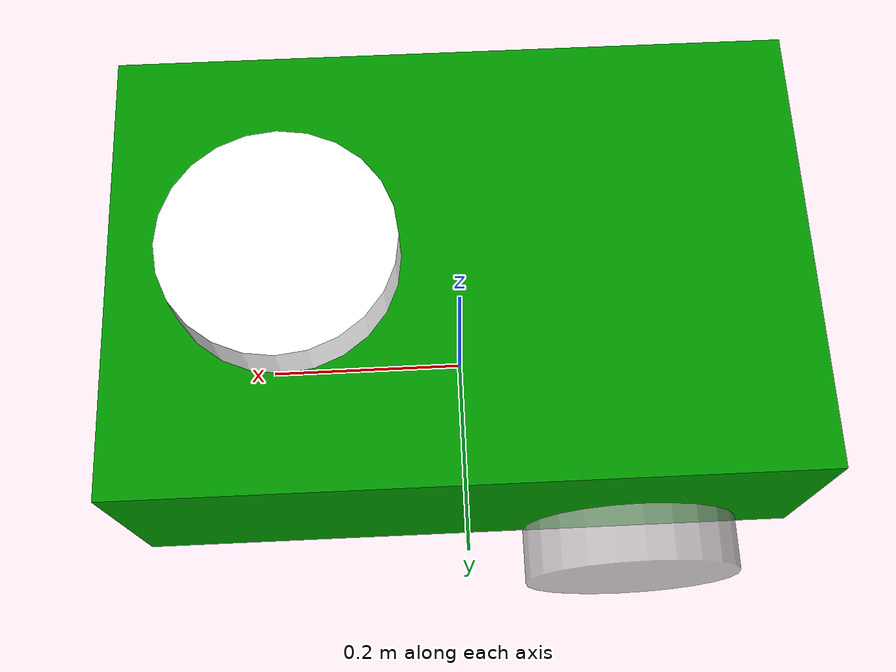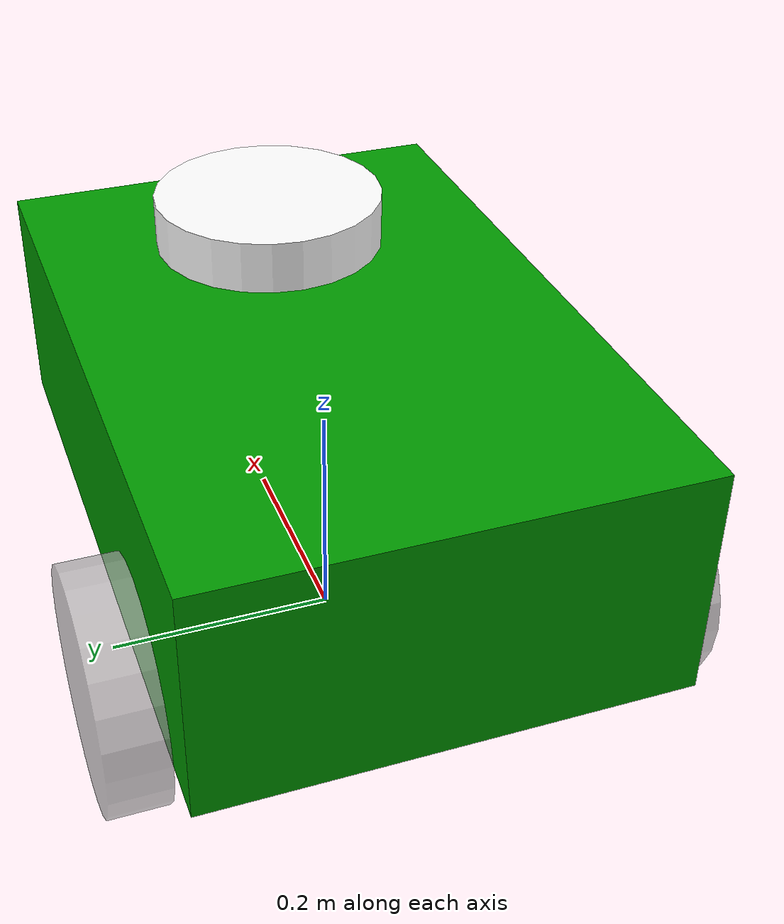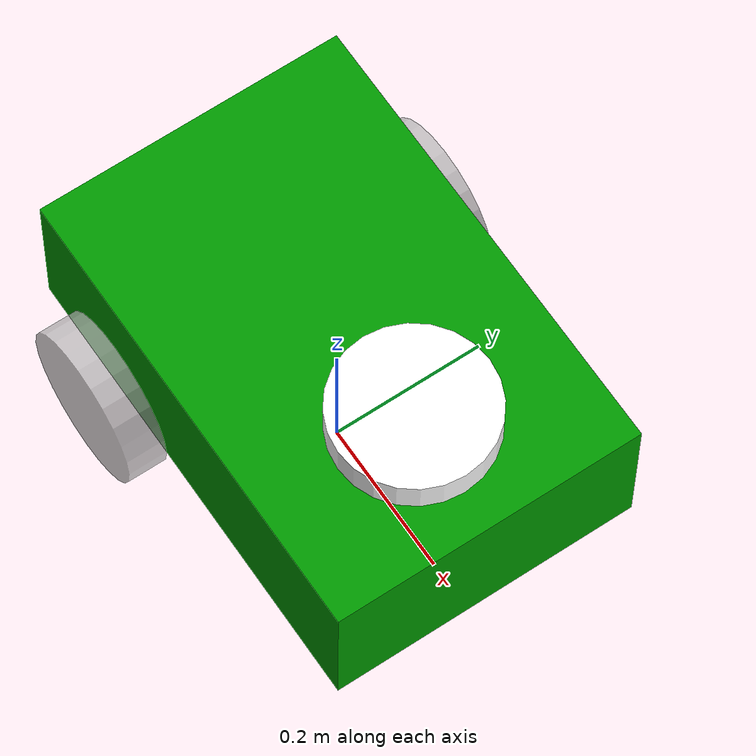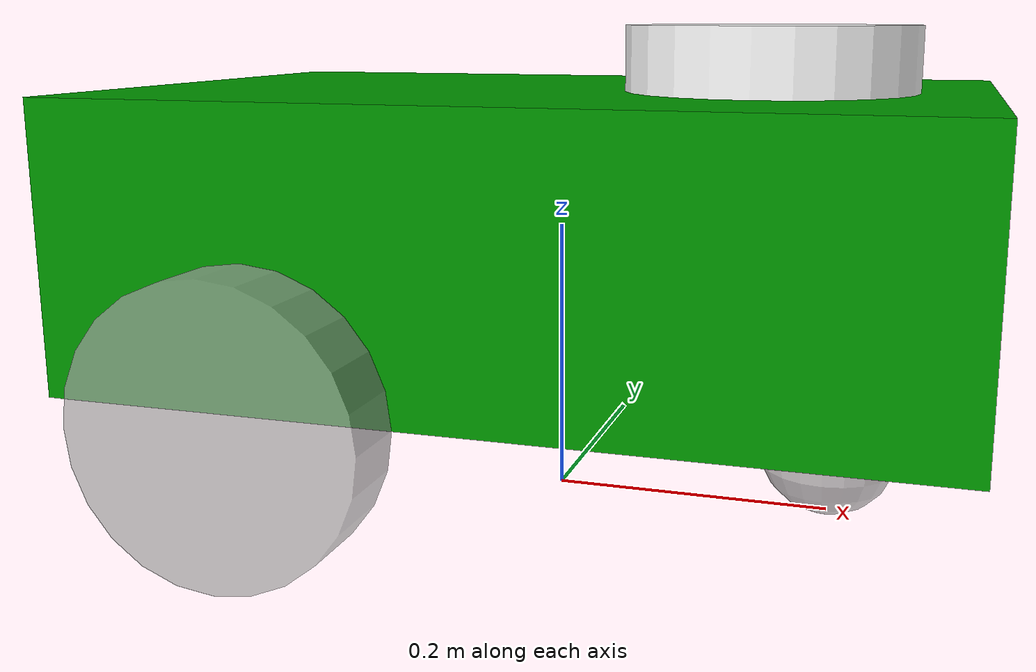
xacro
<?xml version="1.0"?>
<robot name="my_robot" xmlns:xacro="http://www.ros.org/wiki/xacro">
	<xacro:property name="base_length" value="0.6" />
	<xacro:property name="base_width" value="0.4" />
	<xacro:property name="base_height" value="0.2" />
	 <xacro:macro name="box_inertia" params="mass lx ly lz xyz rpy">
 		<inertial>
 			<origin xyz="${xyz}" rpy="${rpy}" />
			<mass value="${mass}" />
 			<inertia ixx="${(mass / 12.0) * (ly * ly + lz * lz)}" ixy="0" ixz="0"
 				iyy="${(mass / 12.0) * (lx * lx + lz * lz)}" iyz="0"
 				izz="${(mass / 12.0) * (lx * lx + ly * ly)}" />
 		</inertial>
 	</xacro:macro>

	<xacro:macro name="cylinder_inertia" params="mass radius length xyz rpy">
        	<inertial>
            		<origin xyz="${xyz}" rpy="${rpy}" />
            		<mass value="${mass}" />
            		<inertia ixx="${(1/12) * mass * (3*radius*radius + length*length)}"
                		iyy="${(1/12) * mass * (3*radius*radius + length*length)}"
                		izz="${(0.5) * mass * radius*radius}"
                		ixy="0" ixz="0" iyz="0" />
        	</inertial>
    	</xacro:macro>

	<material name="green">
		<color rgba="0 0.6 0 1"/>
	</material>

	<material name="white">
		<color rgba="1 1 1 1"/>
	</material>

	<material name="gray">
		<color rgba="0.7 0.7 0.7 0.7"/>
	</material>

	<link name="base_link">

		<visual>
			<geometry>
				<box size="${base_length} 0.4 0.2" />
			</geometry>
			<origin xyz="0 0 0.1" rpy="0 0 0" />
			<material name="green"/>
		</visual>

		<collision>
 			<geometry>
 				<box size="${base_length} ${base_width} ${base_height}" />
 			</geometry>
 			<origin xyz="0 0 ${base_height / 2.0}" rpy="0 0 0" />
 		</collision>

		<xacro:box_inertia mass="5.0" lx="${base_length}" ly="${base_width}"
 		lz="${base_height}" xyz="0 0 ${base_height / 2.0}" rpy="0 0 0" />
	</link>

	<link name="lidar">
		<visual>
			<geometry>
				<cylinder radius="0.1" length="0.05" />
			</geometry>
			<origin xyz="0 0 0.1" rpy="0 0 0" />
			<material name="white"/>
 		</visual>
 		<collision>
 			<geometry>
 				<cylinder radius="0.1" length="0.05" />
 			</geometry>
 			<origin xyz="0 0 0.1" rpy="0 0 0" />
 		</collision>
 		<xacro:cylinder_inertia mass="1.0" radius="0.05" length="0.1"
 		xyz="0 0 0" rpy="0 0 0" />
 	</link>

 	<link name="left_wheel">
		<visual>
			<geometry>
				<cylinder radius="0.1" length="0.05" />
			</geometry>
			<origin xyz="0 0 0.025" rpy="0 0 0" />
			<material name="gray"/>
 		</visual>

		<collision>
 			<geometry>
 				<cylinder radius="0.1" length="0.05" />
 			</geometry>
 			<origin xyz="0 0 0.025" rpy="0 0 0" />
 		</collision>

 		<xacro:cylinder_inertia mass="1.0" radius="0.05" length="0.2"
 		 xyz="0 0 0.025" rpy="0 0 0" />
 	</link>

 	<link name="right_wheel">
		<visual>
			<geometry>
				<cylinder radius="0.1" length="0.05" />
			</geometry>
			<origin xyz="0 0 0.025" rpy="0 0 0" />
			<material name="gray"/>
 		</visual>

		<collision>
 			<geometry>
 				<cylinder radius="0.1" length="0.05" />
 			</geometry>
 			<origin xyz="0 0 0.025" rpy="0 0 0" />
 		</collision>

 		<xacro:cylinder_inertia mass="1.0" radius="0.05" length="0.2"
 		 xyz="0 0 0.025" rpy="0 0 0" />
 	</link>

 	<link name="caster_wheel">
		<visual>
			<geometry>
				<sphere radius="0.05" />
			</geometry>
			<origin xyz="0 0 0" rpy="0 0 0" />
			<material name="gray" />
		</visual>

		<collision>
 			<geometry>
 				<sphere radius="0.05" />
 			</geometry>
 			<origin xyz="0 0 0" rpy="0 0 0" />
 		</collision>

		<xacro:cylinder_inertia mass="2.0" radius="0.1" length="0.1"
 		 xyz="0 0 0" rpy="0 0 0" />
	</link>

 	<link name="base_footprint" />

 	<joint name="base_lidar_joint" type="fixed">
		<parent link="base_link"/>
		<child link="lidar"/>
		<origin xyz="0.15 0 0.12" rpy="0 0 0"/>
	</joint>

	<joint name="base_left_wheel_joint" type="continuous">
		<parent link="base_link"/>
		<child link="left_wheel"/>
		<origin xyz="-0.15 0.2 0" rpy="${-pi / 2.0} 0 0"/>
		<axis xyz="0 0 1"/>
	</joint>

	<joint name="base_right_wheel_joint" type="continuous">
		<parent link="base_link"/>
		<child link="right_wheel"/>
		<origin xyz="-0.15 -0.25 0" rpy="-1.57 0 0"/>
		<axis xyz="0 0 1"/>
	</joint>

	<joint name="base_caster_wheel_joint" type="fixed">
		<parent link="base_link"/>
		<child link="caster_wheel"/>
		<origin xyz="0.2 0 -0.05" rpy="0 0 0" />
	</joint>

	<joint name="base_joint" type="fixed">
 		<parent link="base_footprint"/>
 		<child link="base_link"/>
 		<origin xyz="0 0 0.1" rpy="0 0 0" />
 	</joint>

 	<gazebo reference="base_link">
 		<material>Gazebo/Green</material>
 	</gazebo>

  	<gazebo reference="right_wheel">
 		<material>Gazebo/Gray</material>
 	</gazebo>

 	<gazebo reference="left_wheel">
 		<material>Gazebo/Gray</material>
 	</gazebo>

 	<gazebo reference="caster_wheel">
 		<material>Gazebo/Gray</material>
 	</gazebo>

 	<gazebo reference="lidar">
 		<material>Gazebo/White</material>
 	</gazebo>

 	<gazebo>
      	  <plugin name="diff_drive_controller" filename="libgazebo_ros_diff_drive.so">
            <!-- Update rate in Hz -->
            <update_rate>50</update_rate>
            <!-- wheels -->
            <left_joint>base_left_wheel_joint</left_joint>
            <right_joint>base_right_wheel_joint</right_joint>

            <!-- kinematics -->
            <wheel_separation>0.4</wheel_separation>
            <wheel_diameter>0.2</wheel_diameter>

            <!-- output -->
            <publish_odom>true</publish_odom>
            <publish_odom_tf>true</publish_odom_tf>
            <publish_wheel_tf>true</publish_wheel_tf>

            <odometry_topic>odom</odometry_topic>
            <odometry_frame>odom</odometry_frame>
            <robot_base_frame>base_footprint</robot_base_frame>

            <!-- input -->
            <command_topic>cmd_vel</command_topic>

          </plugin>
	</gazebo>

</robot>
